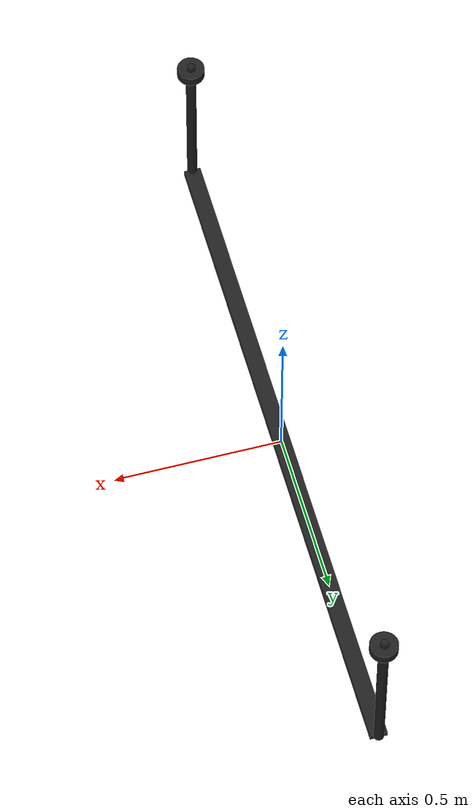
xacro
<?xml version="1.0"?>
<robot xmlns:xacro="http://ros.org/wiki/xacro" name="gpsbase" >

  <!-- bring different parts of robots  -->
  <xacro:include filename="$(find rovers_descriptions)/urdf/gpsbase_gazebo.xacro"/>

  <xacro:property name="linking_plate_width" value="2.0"/>
  <xacro:property name="gps_baseplate_height" value="0.03"/>
  <xacro:property name="gps_baseplate_dia" value="0.08"/>
  <xacro:property name="gps_support_height" value="0.5"/>

  <link name="linking_plate">
    <visual>
      <geometry>
        <box size="0.05 ${linking_plate_width} 0.02"/>
      </geometry>
      <material name="black_plastic"/>
    </visual>
    <collision>
      <geometry>
        <box size="0.05 ${linking_plate_width} 0.2"/>
      </geometry>
    </collision>
    <inertial>
      <mass value="0.25"/>
      <inertia ixx="1.0e-2" ixy="0.0" ixz="0.0" iyy="1.0e-2" iyz="0.0" izz="1.0e-2"/>
    </inertial>
  </link>

  <xacro:macro name="gps_unit" params="name:=gps_sensor" >

    <link name="${name}_baseplate">
      <visual>
        <geometry>
          <cylinder length="${gps_baseplate_height}" radius="${gps_baseplate_dia/2}"/>
        </geometry>
        <material name="black_plastic"/>
      </visual>
      <collision>
        <geometry>
         <cylinder length="${gps_baseplate_height}" radius="${gps_baseplate_dia/2}"/>
        </geometry>
      </collision>
      <inertial>
        <mass value="0.2"/>
        <inertia ixx="1.0e-2" ixy="0.0" ixz="0.0" iyy="1.0e-2" iyz="0.0" izz="1.0e-2"/>
      </inertial>
    </link>

    <link name="${name}_supportbar">
      <visual>
        <geometry>
          <cylinder length="${gps_support_height}" radius="0.015"/>
        </geometry>
        <material name="black_plastic"/>
      </visual>
      <collision>
        <geometry>
         <cylinder length="${gps_support_height}" radius="0.015"/>
        </geometry>
      </collision>
      <inertial>
        <mass value="0.2"/>
        <inertia ixx="1.0e-2" ixy="0.0" ixz="0.0" iyy="1.0e-2" iyz="0.0" izz="1.0e-2"/>
      </inertial>
    </link>

    <link name="${name}_sphere">
      <visual>
        <geometry>
          <sphere radius="${gps_baseplate_height/2}"/>
        </geometry>
        <material name="black_plastic"/>
      </visual>
      <collision>
        <geometry>
         <cylinder length="${gps_support_height}" radius="0.015"/>
        </geometry>
      </collision>
    </link>

    <joint name="${name}_base2support" type="fixed">
      <parent link="${name}_supportbar"/>
      <child link="${name}_baseplate"/>
      <origin xyz="0 0 ${gps_support_height/2}" rpy="0 0 0"/>
      <axis rpy="0 0 0" xyz="0 0 1"/>
    </joint>

    <joint name="${name}_base2sphere" type="fixed">
      <parent link="${name}_baseplate"/>
      <child link="${name}_sphere"/>
      <origin xyz="0 0 ${gps_baseplate_height/2}" rpy="0 0 0"/>
      <axis rpy="0 0 0" xyz="0 0 1"/>
    </joint>

  </xacro:macro>

  <xacro:gps_unit name="gps_right"/>
  <xacro:gps_unit name="gps_left"/>

  <joint name="gps_right_rover" type="fixed">
    <parent link="linking_plate"/>
    <child link="gps_right_supportbar"/>
    <origin xyz="0 ${-1*linking_plate_width/2} ${gps_support_height/2}" rpy="0 0 0"/>
    <axis rpy="0 0 0" xyz="0 0 1"/>
  </joint>

  <joint name="gps_left_rover" type="fixed">
    <parent link="linking_plate"/>
    <child link="gps_left_supportbar"/>
    <origin xyz="0 ${1*linking_plate_width/2} ${gps_support_height/2}" rpy="0 0 0"/>
    <axis rpy="0 0 0" xyz="0 0 1"/>
  </joint>

</robot>
